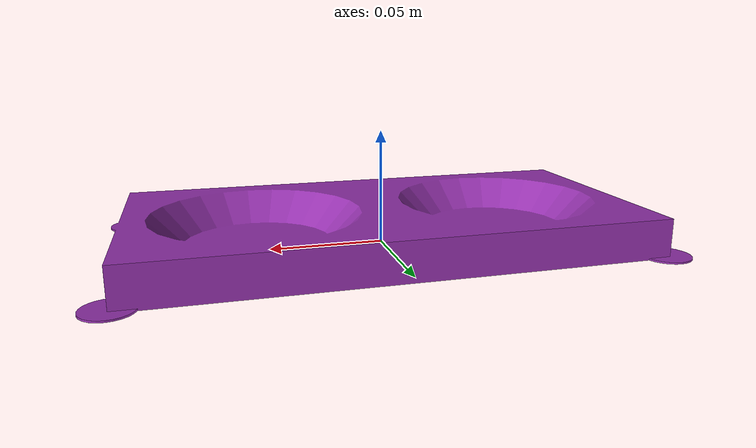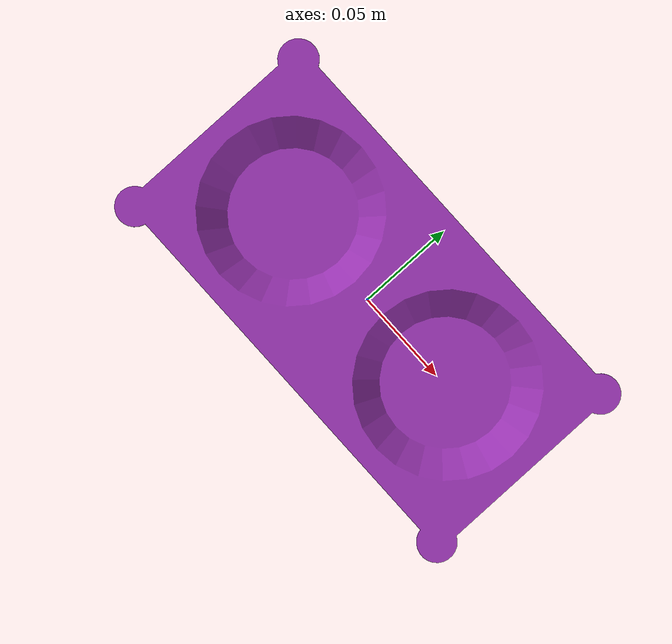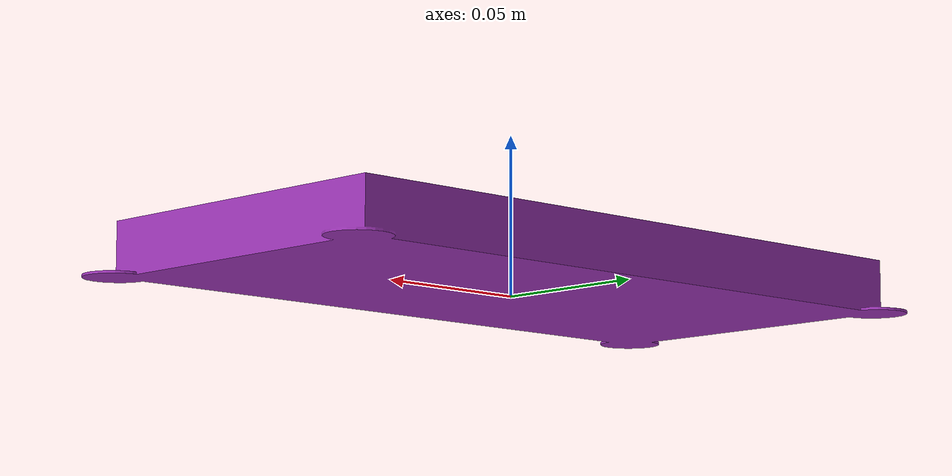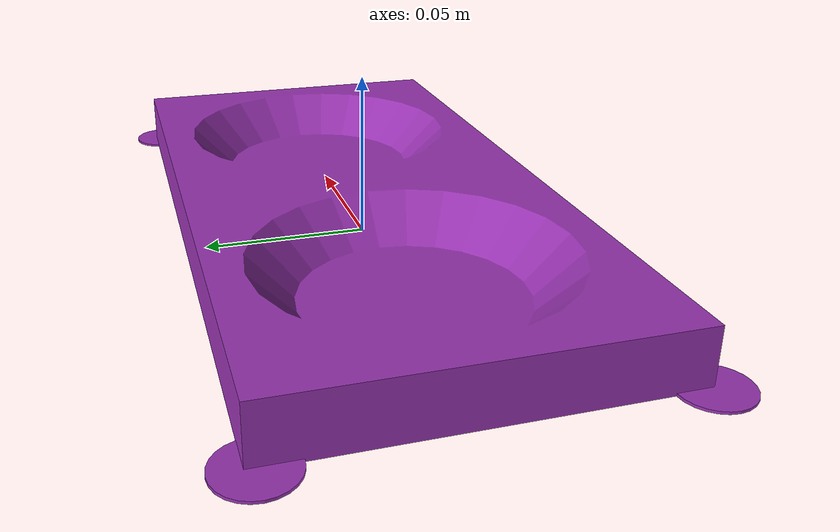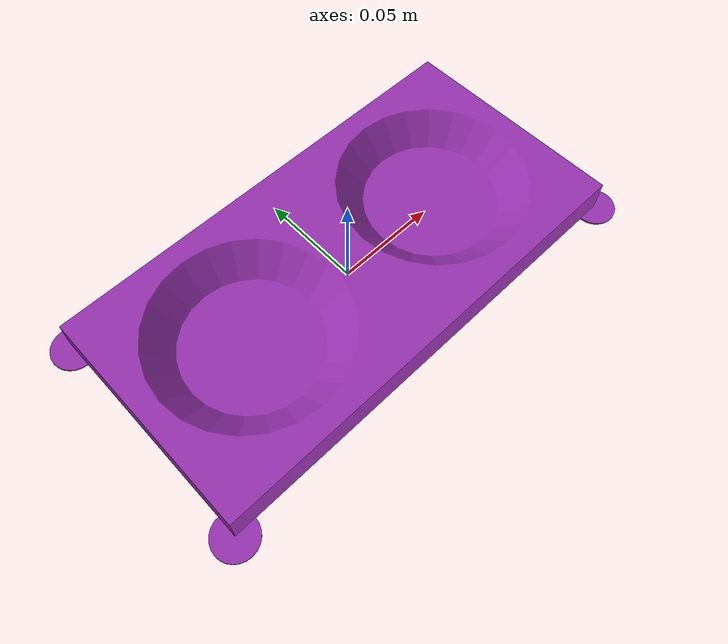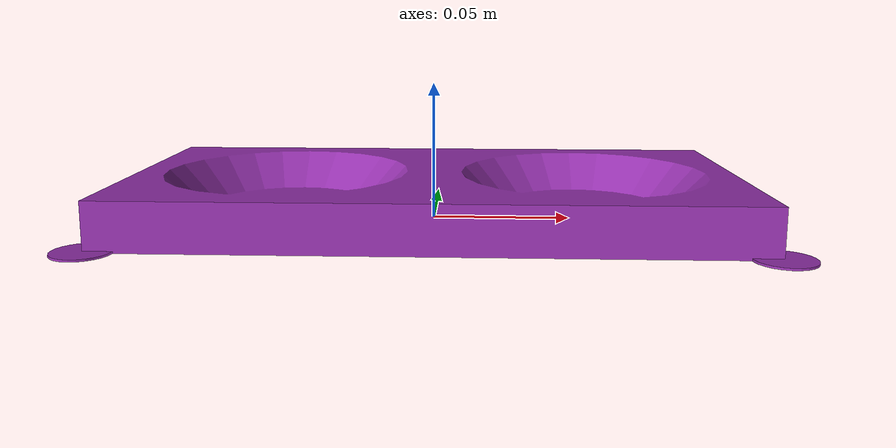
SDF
<?xml version="1.0" encoding="UTF-8"?>
<sdf version="1.0">
    <model name="sku_large_gear_vessel">
        <static>1</static>
        <link name="link1">
            <collision name="collision1">
                <pose frame="">0 0 0.0 0 0 1.570796</pose>
                <geometry>
                    <mesh>
                        <scale>0.0254 0.0254 0.0254</scale>
                        <uri>model://gear_support/meshes/large_gear_holder_Centered_ZeroZmin.stl</uri>
                    </mesh>
                </geometry>
                <max_contacts>10</max_contacts>
                <surface>
                    <contact>
                        <ode />
                    </contact>
                    <bounce />
                    <friction>
                        <torsional>
                            <ode />
                        </torsional>
                        <ode />
                    </friction>
                </surface>
            </collision>
            <visual name="visual1">
                <pose frame="">0 0 0.0 0 0 1.570796</pose>
                <geometry>
                    <mesh>
                        <scale>0.0254 0.0254 0.0254</scale>
                        <uri>model://gear_support/meshes/large_gear_holder_Centered_ZeroZmin.stl</uri>
                    </mesh>
                </geometry>
                <material>
                    <script>
                        <name>Gazebo/Purple</name>
                        <uri>__default__</uri>
                    </script>
                </material>
            </visual>
            <inertial>
                <mass>0.39</mass>
                <inertia>
                    <ixx>1.19794657e+02</ixx>
                    <ixy>-8.44035782e-03</ixy>
                    <ixz>-2.33453848e-04</ixz>
                    <iyy>3.57882366e+01</iyy>
                    <iyz>1.11958400e-03</iyz>
                    <izz>1.54252131e+02</izz>
                </inertia>
            </inertial>
            <self_collide>0</self_collide>
            <kinematic>0</kinematic>
            <gravity>1</gravity>
        </link>
    </model>
</sdf>
